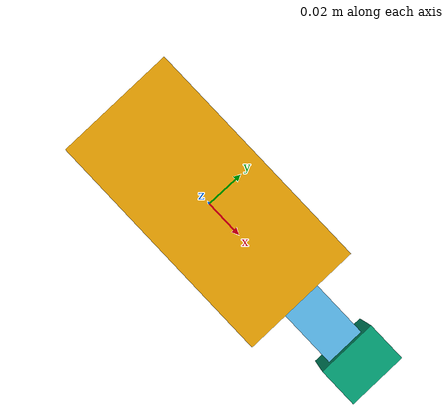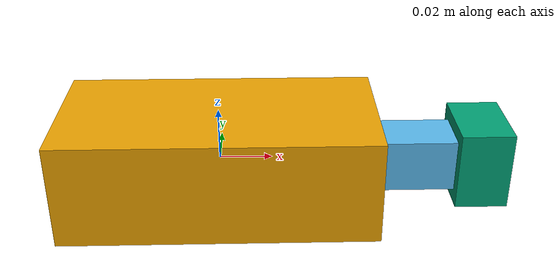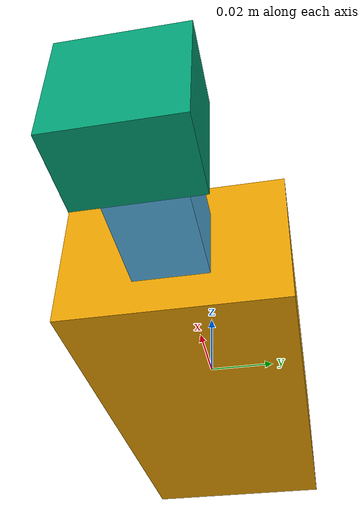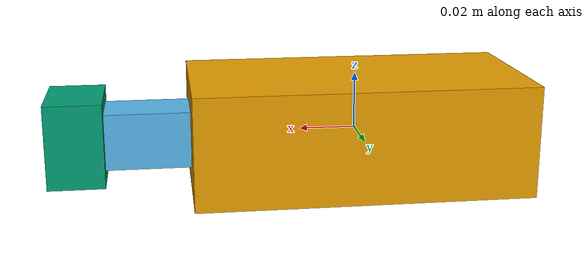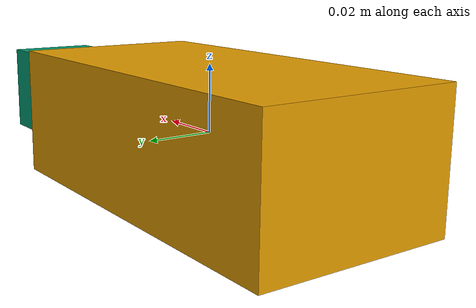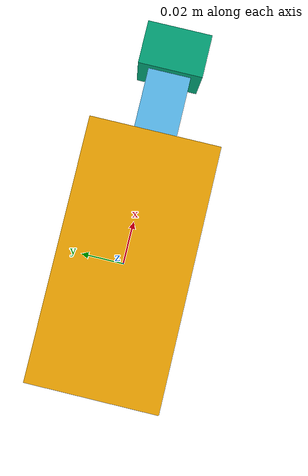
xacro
<?xml version="1.0"?>
<robot name="simple_endeffector" xmlns:xacro="http://www.ros.org/wiki/xacro">
  <xacro:arg name="finger_length" default="0.10"/>
  <xacro:arg name="include_tip_pad" default="true"/>

  <xacro:property name="finger_width" value="0.02"/>
  <xacro:property name="finger_height" value="0.02"/>
  <xacro:property name="resolved_finger_length" value="$(arg finger_length)"/>

  <link name="endeffector_base">
    <visual>
      <geometry>
        <box size="0.12 0.06 0.04"/>
      </geometry>
    </visual>
    <collision>
      <geometry>
        <box size="0.12 0.06 0.04"/>
      </geometry>
    </collision>
  </link>

  <link name="finger_link">
    <visual>
      <geometry>
        <box size="${resolved_finger_length} ${finger_width} ${finger_height}"/>
      </geometry>
    </visual>
    <collision>
      <geometry>
        <box size="${resolved_finger_length} ${finger_width} ${finger_height}"/>
      </geometry>
    </collision>
  </link>

  <joint name="finger_joint" type="revolute">
    <parent link="endeffector_base"/>
    <child link="finger_link"/>
    <origin xyz="${resolved_finger_length / 2} 0.0 0.0" rpy="0 0 0"/>
    <axis xyz="0 0 1"/>
    <limit lower="-0.5" upper="0.5" effort="5.0" velocity="1.0"/>
  </joint>

  <xacro:if value="$(arg include_tip_pad)">
    <link name="finger_pad">
      <visual>
        <geometry>
          <box size="0.02 0.03 0.03"/>
        </geometry>
      </visual>
      <collision>
        <geometry>
          <box size="0.02 0.03 0.03"/>
        </geometry>
      </collision>
    </link>

    <joint name="finger_pad_joint" type="fixed">
      <parent link="finger_link"/>
      <child link="finger_pad"/>
      <origin xyz="${resolved_finger_length / 2} 0.0 0.0" rpy="0 0 0"/>
    </joint>
  </xacro:if>
</robot>
